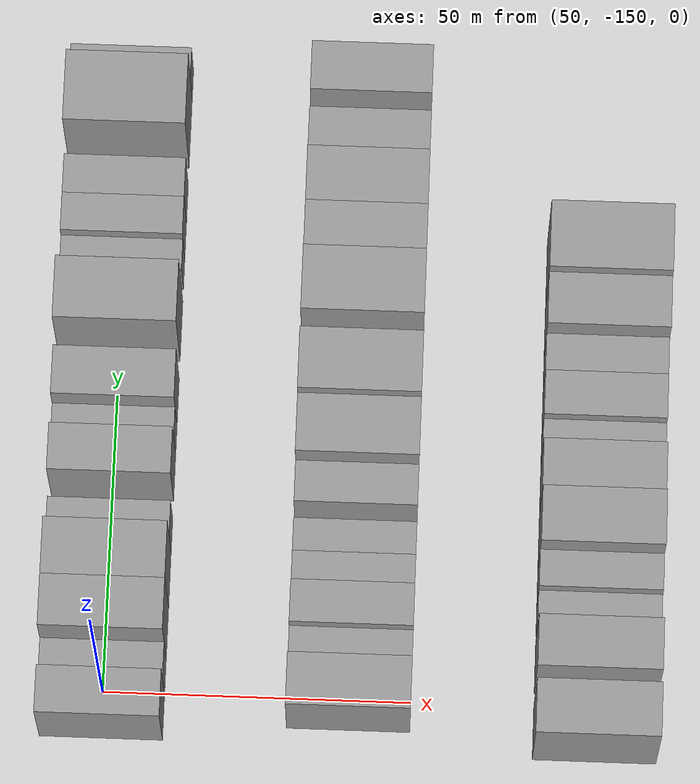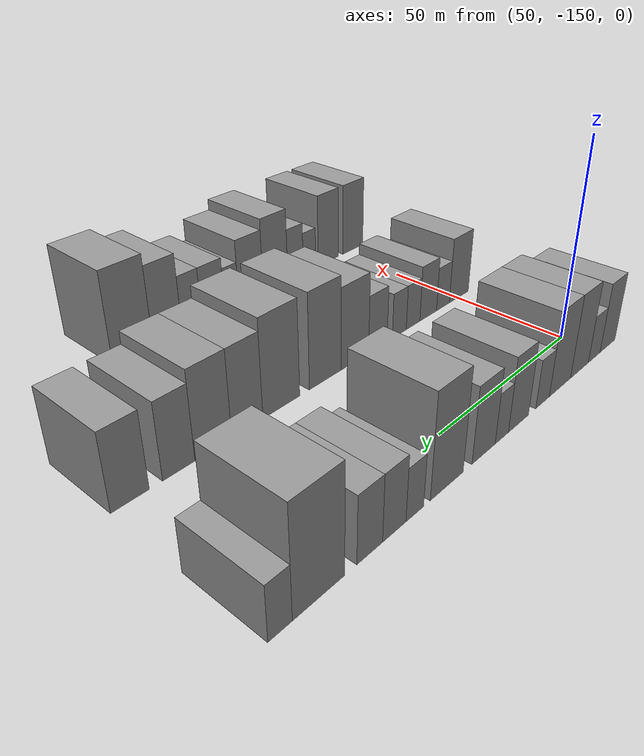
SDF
<sdf version="1.6">
 <world name="default">
  <model name="building_52">
   <static>1</static>
   <pose>50.0000 -153.7941 0 0.000000 0.000000 0.000000</pose>
   <link name="link">
    <pose>0 0 9.00 0 0 0</pose>
    <collision name="collision"><geometry><box><size>20.0000 7.7361 18.0000</size></box></geometry></collision>
    <visual name="visual">
     <cast_shadows>0</cast_shadows>
     <geometry><box><size>20.0000 7.7361 18.0000</size></box></geometry>
     <material>
      <script>
       <uri>model://grey_wall/materials/scripts</uri>
       <uri>model://grey_wall/materials/textures</uri>
       <name>vrc/grey_wall</name>
      </script>
     </material>
    </visual>
   </link>
  </model>
  <model name="building_53">
   <static>1</static>
   <pose>50.0000 -147.0172 0 0.000000 0.000000 0.000000</pose>
   <link name="link">
    <pose>0 0 6.00 0 0 0</pose>
    <collision name="collision"><geometry><box><size>20.0000 5.8177 12.0000</size></box></geometry></collision>
    <visual name="visual">
     <cast_shadows>0</cast_shadows>
     <geometry><box><size>20.0000 5.8177 12.0000</size></box></geometry>
     <material>
      <script>
       <uri>model://grey_wall/materials/scripts</uri>
       <uri>model://grey_wall/materials/textures</uri>
       <name>vrc/grey_wall</name>
      </script>
     </material>
    </visual>
   </link>
  </model>
  <model name="building_54">
   <static>1</static>
   <pose>50.0000 -139.8735 0 0.000000 0.000000 0.000000</pose>
   <link name="link">
    <pose>0 0 10.50 0 0 0</pose>
    <collision name="collision"><geometry><box><size>20.0000 8.4696 21.0000</size></box></geometry></collision>
    <visual name="visual">
     <cast_shadows>0</cast_shadows>
     <geometry><box><size>20.0000 8.4696 21.0000</size></box></geometry>
     <material>
      <script>
       <uri>model://grey_wall/materials/scripts</uri>
       <uri>model://grey_wall/materials/textures</uri>
       <name>vrc/grey_wall</name>
      </script>
     </material>
    </visual>
   </link>
  </model>
  <model name="building_55">
   <static>1</static>
   <pose>50.0000 -130.9446 0 0.000000 0.000000 0.000000</pose>
   <link name="link">
    <pose>0 0 10.50 0 0 0</pose>
    <collision name="collision"><geometry><box><size>20.0000 9.3882 21.0000</size></box></geometry></collision>
    <visual name="visual">
     <cast_shadows>0</cast_shadows>
     <geometry><box><size>20.0000 9.3882 21.0000</size></box></geometry>
     <material>
      <script>
       <uri>model://grey_wall/materials/scripts</uri>
       <uri>model://grey_wall/materials/textures</uri>
       <name>vrc/grey_wall</name>
      </script>
     </material>
    </visual>
   </link>
  </model>
  <model name="building_56">
   <static>1</static>
   <pose>50.0000 -123.4166 0 0.000000 0.000000 0.000000</pose>
   <link name="link">
    <pose>0 0 6.00 0 0 0</pose>
    <collision name="collision"><geometry><box><size>20.0000 5.6678 12.0000</size></box></geometry></collision>
    <visual name="visual">
     <cast_shadows>0</cast_shadows>
     <geometry><box><size>20.0000 5.6678 12.0000</size></box></geometry>
     <material>
      <script>
       <uri>model://grey_wall/materials/scripts</uri>
       <uri>model://grey_wall/materials/textures</uri>
       <name>vrc/grey_wall</name>
      </script>
     </material>
    </visual>
   </link>
  </model>
  <model name="building_57">
   <static>1</static>
   <pose>50.0000 -113.6862 0 0.000000 0.000000 0.000000</pose>
   <link name="link">
    <pose>0 0 9.00 0 0 0</pose>
    <collision name="collision"><geometry><box><size>20.0000 7.7929 18.0000</size></box></geometry></collision>
    <visual name="visual">
     <cast_shadows>0</cast_shadows>
     <geometry><box><size>20.0000 7.7929 18.0000</size></box></geometry>
     <material>
      <script>
       <uri>model://grey_wall/materials/scripts</uri>
       <uri>model://grey_wall/materials/textures</uri>
       <name>vrc/grey_wall</name>
      </script>
     </material>
    </visual>
   </link>
  </model>
  <model name="building_58">
   <static>1</static>
   <pose>50.0000 -107.3409 0 0.000000 0.000000 0.000000</pose>
   <link name="link">
    <pose>0 0 6.00 0 0 0</pose>
    <collision name="collision"><geometry><box><size>20.0000 4.8977 12.0000</size></box></geometry></collision>
    <visual name="visual">
     <cast_shadows>0</cast_shadows>
     <geometry><box><size>20.0000 4.8977 12.0000</size></box></geometry>
     <material>
      <script>
       <uri>model://grey_wall/materials/scripts</uri>
       <uri>model://grey_wall/materials/textures</uri>
       <name>vrc/grey_wall</name>
      </script>
     </material>
    </visual>
   </link>
  </model>
  <model name="building_59">
   <static>1</static>
   <pose>50.0000 -100.8337 0 0.000000 0.000000 0.000000</pose>
   <link name="link">
    <pose>0 0 9.00 0 0 0</pose>
    <collision name="collision"><geometry><box><size>20.0000 8.1168 18.0000</size></box></geometry></collision>
    <visual name="visual">
     <cast_shadows>0</cast_shadows>
     <geometry><box><size>20.0000 8.1168 18.0000</size></box></geometry>
     <material>
      <script>
       <uri>model://grey_wall/materials/scripts</uri>
       <uri>model://grey_wall/materials/textures</uri>
       <name>vrc/grey_wall</name>
      </script>
     </material>
    </visual>
   </link>
  </model>
  <model name="building_60">
   <static>1</static>
   <pose>50.0000 -88.5986 0 0.000000 0.000000 0.000000</pose>
   <link name="link">
    <pose>0 0 12.00 0 0 0</pose>
    <collision name="collision"><geometry><box><size>20.0000 10.3534 24.0000</size></box></geometry></collision>
    <visual name="visual">
     <cast_shadows>0</cast_shadows>
     <geometry><box><size>20.0000 10.3534 24.0000</size></box></geometry>
     <material>
      <script>
       <uri>model://grey_wall/materials/scripts</uri>
       <uri>model://grey_wall/materials/textures</uri>
       <name>vrc/grey_wall</name>
      </script>
     </material>
    </visual>
   </link>
  </model>
  <model name="building_61">
   <static>1</static>
   <pose>50.0000 -78.8616 0 0.000000 0.000000 0.000000</pose>
   <link name="link">
    <pose>0 0 6.00 0 0 0</pose>
    <collision name="collision"><geometry><box><size>20.0000 5.1204 12.0000</size></box></geometry></collision>
    <visual name="visual">
     <cast_shadows>0</cast_shadows>
     <geometry><box><size>20.0000 5.1204 12.0000</size></box></geometry>
     <material>
      <script>
       <uri>model://grey_wall/materials/scripts</uri>
       <uri>model://grey_wall/materials/textures</uri>
       <name>vrc/grey_wall</name>
      </script>
     </material>
    </visual>
   </link>
  </model>
  <model name="building_62">
   <static>1</static>
   <pose>50.0000 -73.0884 0 0.000000 0.000000 0.000000</pose>
   <link name="link">
    <pose>0 0 7.50 0 0 0</pose>
    <collision name="collision"><geometry><box><size>20.0000 6.4260 15.0000</size></box></geometry></collision>
    <visual name="visual">
     <cast_shadows>0</cast_shadows>
     <geometry><box><size>20.0000 6.4260 15.0000</size></box></geometry>
     <material>
      <script>
       <uri>model://grey_wall/materials/scripts</uri>
       <uri>model://grey_wall/materials/textures</uri>
       <name>vrc/grey_wall</name>
      </script>
     </material>
    </visual>
   </link>
  </model>
  <model name="building_63">
   <static>1</static>
   <pose>50.0000 -66.5584 0 0.000000 0.000000 0.000000</pose>
   <link name="link">
    <pose>0 0 7.50 0 0 0</pose>
    <collision name="collision"><geometry><box><size>20.0000 6.6340 15.0000</size></box></geometry></collision>
    <visual name="visual">
     <cast_shadows>0</cast_shadows>
     <geometry><box><size>20.0000 6.6340 15.0000</size></box></geometry>
     <material>
      <script>
       <uri>model://grey_wall/materials/scripts</uri>
       <uri>model://grey_wall/materials/textures</uri>
       <name>vrc/grey_wall</name>
      </script>
     </material>
    </visual>
   </link>
  </model>
  <model name="building_64">
   <static>1</static>
   <pose>50.0000 -54.2658 0 0.000000 0.000000 0.000000</pose>
   <link name="link">
    <pose>0 0 12.00 0 0 0</pose>
    <collision name="collision"><geometry><box><size>20.0000 11.9513 24.0000</size></box></geometry></collision>
    <visual name="visual">
     <cast_shadows>0</cast_shadows>
     <geometry><box><size>20.0000 11.9513 24.0000</size></box></geometry>
     <material>
      <script>
       <uri>model://grey_wall/materials/scripts</uri>
       <uri>model://grey_wall/materials/textures</uri>
       <name>vrc/grey_wall</name>
      </script>
     </material>
    </visual>
   </link>
  </model>
  <model name="building_65">
   <static>1</static>
   <pose>50.0000 -45.7185 0 0.000000 0.000000 0.000000</pose>
   <link name="link">
    <pose>0 0 6.00 0 0 0</pose>
    <collision name="collision"><geometry><box><size>20.0000 5.1433 12.0000</size></box></geometry></collision>
    <visual name="visual">
     <cast_shadows>0</cast_shadows>
     <geometry><box><size>20.0000 5.1433 12.0000</size></box></geometry>
     <material>
      <script>
       <uri>model://grey_wall/materials/scripts</uri>
       <uri>model://grey_wall/materials/textures</uri>
       <name>vrc/grey_wall</name>
      </script>
     </material>
    </visual>
   </link>
  </model>
  <model name="building_194">
   <static>1</static>
   <pose>90.0000 -150.6109 0 0.000000 0.000000 0.000000</pose>
   <link name="link">
    <pose>0 0 9.00 0 0 0</pose>
    <collision name="collision"><geometry><box><size>20.0000 8.6053 18.0000</size></box></geometry></collision>
    <visual name="visual">
     <cast_shadows>0</cast_shadows>
     <geometry><box><size>20.0000 8.6053 18.0000</size></box></geometry>
     <material>
      <script>
       <uri>model://grey_wall/materials/scripts</uri>
       <uri>model://grey_wall/materials/textures</uri>
       <name>vrc/grey_wall</name>
      </script>
     </material>
    </visual>
   </link>
  </model>
  <model name="building_195">
   <static>1</static>
   <pose>90.0000 -143.4788 0 0.000000 0.000000 0.000000</pose>
   <link name="link">
    <pose>0 0 6.00 0 0 0</pose>
    <collision name="collision"><geometry><box><size>20.0000 5.6589 12.0000</size></box></geometry></collision>
    <visual name="visual">
     <cast_shadows>0</cast_shadows>
     <geometry><box><size>20.0000 5.6589 12.0000</size></box></geometry>
     <material>
      <script>
       <uri>model://grey_wall/materials/scripts</uri>
       <uri>model://grey_wall/materials/textures</uri>
       <name>vrc/grey_wall</name>
      </script>
     </material>
    </visual>
   </link>
  </model>
  <model name="building_196">
   <static>1</static>
   <pose>90.0000 -137.1305 0 0.000000 0.000000 0.000000</pose>
   <link name="link">
    <pose>0 0 7.50 0 0 0</pose>
    <collision name="collision"><geometry><box><size>20.0000 7.0379 15.0000</size></box></geometry></collision>
    <visual name="visual">
     <cast_shadows>0</cast_shadows>
     <geometry><box><size>20.0000 7.0379 15.0000</size></box></geometry>
     <material>
      <script>
       <uri>model://grey_wall/materials/scripts</uri>
       <uri>model://grey_wall/materials/textures</uri>
       <name>vrc/grey_wall</name>
      </script>
     </material>
    </visual>
   </link>
  </model>
  <model name="building_197">
   <static>1</static>
   <pose>90.0000 -130.8637 0 0.000000 0.000000 0.000000</pose>
   <link name="link">
    <pose>0 0 6.00 0 0 0</pose>
    <collision name="collision"><geometry><box><size>20.0000 5.4956 12.0000</size></box></geometry></collision>
    <visual name="visual">
     <cast_shadows>0</cast_shadows>
     <geometry><box><size>20.0000 5.4956 12.0000</size></box></geometry>
     <material>
      <script>
       <uri>model://grey_wall/materials/scripts</uri>
       <uri>model://grey_wall/materials/textures</uri>
       <name>vrc/grey_wall</name>
      </script>
     </material>
    </visual>
   </link>
  </model>
  <model name="building_198">
   <static>1</static>
   <pose>90.0000 -125.3883 0 0.000000 0.000000 0.000000</pose>
   <link name="link">
    <pose>0 0 6.00 0 0 0</pose>
    <collision name="collision"><geometry><box><size>20.0000 5.4553 12.0000</size></box></geometry></collision>
    <visual name="visual">
     <cast_shadows>0</cast_shadows>
     <geometry><box><size>20.0000 5.4553 12.0000</size></box></geometry>
     <material>
      <script>
       <uri>model://grey_wall/materials/scripts</uri>
       <uri>model://grey_wall/materials/textures</uri>
       <name>vrc/grey_wall</name>
      </script>
     </material>
    </visual>
   </link>
  </model>
  <model name="building_199">
   <static>1</static>
   <pose>90.0000 -117.2525 0 0.000000 0.000000 0.000000</pose>
   <link name="link">
    <pose>0 0 7.50 0 0 0</pose>
    <collision name="collision"><geometry><box><size>20.0000 6.8163 15.0000</size></box></geometry></collision>
    <visual name="visual">
     <cast_shadows>0</cast_shadows>
     <geometry><box><size>20.0000 6.8163 15.0000</size></box></geometry>
     <material>
      <script>
       <uri>model://grey_wall/materials/scripts</uri>
       <uri>model://grey_wall/materials/textures</uri>
       <name>vrc/grey_wall</name>
      </script>
     </material>
    </visual>
   </link>
  </model>
  <model name="building_200">
   <static>1</static>
   <pose>90.0000 -109.0110 0 0.000000 0.000000 0.000000</pose>
   <link name="link">
    <pose>0 0 10.50 0 0 0</pose>
    <collision name="collision"><geometry><box><size>20.0000 9.6666 21.0000</size></box></geometry></collision>
    <visual name="visual">
     <cast_shadows>0</cast_shadows>
     <geometry><box><size>20.0000 9.6666 21.0000</size></box></geometry>
     <material>
      <script>
       <uri>model://grey_wall/materials/scripts</uri>
       <uri>model://grey_wall/materials/textures</uri>
       <name>vrc/grey_wall</name>
      </script>
     </material>
    </visual>
   </link>
  </model>
  <model name="building_201">
   <static>1</static>
   <pose>90.0000 -99.0348 0 0.000000 0.000000 0.000000</pose>
   <link name="link">
    <pose>0 0 12.00 0 0 0</pose>
    <collision name="collision"><geometry><box><size>20.0000 10.2858 24.0000</size></box></geometry></collision>
    <visual name="visual">
     <cast_shadows>0</cast_shadows>
     <geometry><box><size>20.0000 10.2858 24.0000</size></box></geometry>
     <material>
      <script>
       <uri>model://grey_wall/materials/scripts</uri>
       <uri>model://grey_wall/materials/textures</uri>
       <name>vrc/grey_wall</name>
      </script>
     </material>
    </visual>
   </link>
  </model>
  <model name="building_202">
   <static>1</static>
   <pose>90.0000 -85.4838 0 0.000000 0.000000 0.000000</pose>
   <link name="link">
    <pose>0 0 12.00 0 0 0</pose>
    <collision name="collision"><geometry><box><size>20.0000 10.8162 24.0000</size></box></geometry></collision>
    <visual name="visual">
     <cast_shadows>0</cast_shadows>
     <geometry><box><size>20.0000 10.8162 24.0000</size></box></geometry>
     <material>
      <script>
       <uri>model://grey_wall/materials/scripts</uri>
       <uri>model://grey_wall/materials/textures</uri>
       <name>vrc/grey_wall</name>
      </script>
     </material>
    </visual>
   </link>
  </model>
  <model name="building_203">
   <static>1</static>
   <pose>90.0000 -75.8133 0 0.000000 0.000000 0.000000</pose>
   <link name="link">
    <pose>0 0 10.50 0 0 0</pose>
    <collision name="collision"><geometry><box><size>20.0000 8.5249 21.0000</size></box></geometry></collision>
    <visual name="visual">
     <cast_shadows>0</cast_shadows>
     <geometry><box><size>20.0000 8.5249 21.0000</size></box></geometry>
     <material>
      <script>
       <uri>model://grey_wall/materials/scripts</uri>
       <uri>model://grey_wall/materials/textures</uri>
       <name>vrc/grey_wall</name>
      </script>
     </material>
    </visual>
   </link>
  </model>
  <model name="building_204">
   <static>1</static>
   <pose>90.0000 -66.8872 0 0.000000 0.000000 0.000000</pose>
   <link name="link">
    <pose>0 0 10.50 0 0 0</pose>
    <collision name="collision"><geometry><box><size>20.0000 9.3274 21.0000</size></box></geometry></collision>
    <visual name="visual">
     <cast_shadows>0</cast_shadows>
     <geometry><box><size>20.0000 9.3274 21.0000</size></box></geometry>
     <material>
      <script>
       <uri>model://grey_wall/materials/scripts</uri>
       <uri>model://grey_wall/materials/textures</uri>
       <name>vrc/grey_wall</name>
      </script>
     </material>
    </visual>
   </link>
  </model>
  <model name="building_205">
   <static>1</static>
   <pose>90.0000 -58.3926 0 0.000000 0.000000 0.000000</pose>
   <link name="link">
    <pose>0 0 9.00 0 0 0</pose>
    <collision name="collision"><geometry><box><size>20.0000 7.6618 18.0000</size></box></geometry></collision>
    <visual name="visual">
     <cast_shadows>0</cast_shadows>
     <geometry><box><size>20.0000 7.6618 18.0000</size></box></geometry>
     <material>
      <script>
       <uri>model://grey_wall/materials/scripts</uri>
       <uri>model://grey_wall/materials/textures</uri>
       <name>vrc/grey_wall</name>
      </script>
     </material>
    </visual>
   </link>
  </model>
  <model name="building_206">
   <static>1</static>
   <pose>90.0000 -47.3894 0 0.000000 0.000000 0.000000</pose>
   <link name="link">
    <pose>0 0 9.00 0 0 0</pose>
    <collision name="collision"><geometry><box><size>20.0000 8.3446 18.0000</size></box></geometry></collision>
    <visual name="visual">
     <cast_shadows>0</cast_shadows>
     <geometry><box><size>20.0000 8.3446 18.0000</size></box></geometry>
     <material>
      <script>
       <uri>model://grey_wall/materials/scripts</uri>
       <uri>model://grey_wall/materials/textures</uri>
       <name>vrc/grey_wall</name>
      </script>
     </material>
    </visual>
   </link>
  </model>
  <model name="building_334">
   <static>1</static>
   <pose>130.0000 -154.2457 0 0.000000 0.000000 0.000000</pose>
   <link name="link">
    <pose>0 0 10.50 0 0 0</pose>
    <collision name="collision"><geometry><box><size>20.0000 8.8935 21.0000</size></box></geometry></collision>
    <visual name="visual">
     <cast_shadows>0</cast_shadows>
     <geometry><box><size>20.0000 8.8935 21.0000</size></box></geometry>
     <material>
      <script>
       <uri>model://grey_wall/materials/scripts</uri>
       <uri>model://grey_wall/materials/textures</uri>
       <name>vrc/grey_wall</name>
      </script>
     </material>
    </visual>
   </link>
  </model>
  <model name="building_335">
   <static>1</static>
   <pose>130.0000 -143.5703 0 0.000000 0.000000 0.000000</pose>
   <link name="link">
    <pose>0 0 10.50 0 0 0</pose>
    <collision name="collision"><geometry><box><size>20.0000 8.4573 21.0000</size></box></geometry></collision>
    <visual name="visual">
     <cast_shadows>0</cast_shadows>
     <geometry><box><size>20.0000 8.4573 21.0000</size></box></geometry>
     <material>
      <script>
       <uri>model://grey_wall/materials/scripts</uri>
       <uri>model://grey_wall/materials/textures</uri>
       <name>vrc/grey_wall</name>
      </script>
     </material>
    </visual>
   </link>
  </model>
  <model name="building_336">
   <static>1</static>
   <pose>130.0000 -135.8262 0 0.000000 0.000000 0.000000</pose>
   <link name="link">
    <pose>0 0 6.00 0 0 0</pose>
    <collision name="collision"><geometry><box><size>20.0000 5.0308 12.0000</size></box></geometry></collision>
    <visual name="visual">
     <cast_shadows>0</cast_shadows>
     <geometry><box><size>20.0000 5.0308 12.0000</size></box></geometry>
     <material>
      <script>
       <uri>model://grey_wall/materials/scripts</uri>
       <uri>model://grey_wall/materials/textures</uri>
       <name>vrc/grey_wall</name>
      </script>
     </material>
    </visual>
   </link>
  </model>
  <model name="building_337">
   <static>1</static>
   <pose>130.0000 -130.2888 0 0.000000 0.000000 0.000000</pose>
   <link name="link">
    <pose>0 0 7.50 0 0 0</pose>
    <collision name="collision"><geometry><box><size>20.0000 6.0440 15.0000</size></box></geometry></collision>
    <visual name="visual">
     <cast_shadows>0</cast_shadows>
     <geometry><box><size>20.0000 6.0440 15.0000</size></box></geometry>
     <material>
      <script>
       <uri>model://grey_wall/materials/scripts</uri>
       <uri>model://grey_wall/materials/textures</uri>
       <name>vrc/grey_wall</name>
      </script>
     </material>
    </visual>
   </link>
  </model>
  <model name="building_338">
   <static>1</static>
   <pose>130.0000 -122.6808 0 0.000000 0.000000 0.000000</pose>
   <link name="link">
    <pose>0 0 10.50 0 0 0</pose>
    <collision name="collision"><geometry><box><size>20.0000 9.1720 21.0000</size></box></geometry></collision>
    <visual name="visual">
     <cast_shadows>0</cast_shadows>
     <geometry><box><size>20.0000 9.1720 21.0000</size></box></geometry>
     <material>
      <script>
       <uri>model://grey_wall/materials/scripts</uri>
       <uri>model://grey_wall/materials/textures</uri>
       <name>vrc/grey_wall</name>
      </script>
     </material>
    </visual>
   </link>
  </model>
  <model name="building_339">
   <static>1</static>
   <pose>130.0000 -113.7663 0 0.000000 0.000000 0.000000</pose>
   <link name="link">
    <pose>0 0 9.00 0 0 0</pose>
    <collision name="collision"><geometry><box><size>20.0000 8.6570 18.0000</size></box></geometry></collision>
    <visual name="visual">
     <cast_shadows>0</cast_shadows>
     <geometry><box><size>20.0000 8.6570 18.0000</size></box></geometry>
     <material>
      <script>
       <uri>model://grey_wall/materials/scripts</uri>
       <uri>model://grey_wall/materials/textures</uri>
       <name>vrc/grey_wall</name>
      </script>
     </material>
    </visual>
   </link>
  </model>
  <model name="building_340">
   <static>1</static>
   <pose>130.0000 -107.0268 0 0.000000 0.000000 0.000000</pose>
   <link name="link">
    <pose>0 0 6.00 0 0 0</pose>
    <collision name="collision"><geometry><box><size>20.0000 4.8220 12.0000</size></box></geometry></collision>
    <visual name="visual">
     <cast_shadows>0</cast_shadows>
     <geometry><box><size>20.0000 4.8220 12.0000</size></box></geometry>
     <material>
      <script>
       <uri>model://grey_wall/materials/scripts</uri>
       <uri>model://grey_wall/materials/textures</uri>
       <name>vrc/grey_wall</name>
      </script>
     </material>
    </visual>
   </link>
  </model>
  <model name="building_341">
   <static>1</static>
   <pose>130.0000 -100.8973 0 0.000000 0.000000 0.000000</pose>
   <link name="link">
    <pose>0 0 7.50 0 0 0</pose>
    <collision name="collision"><geometry><box><size>20.0000 7.4370 15.0000</size></box></geometry></collision>
    <visual name="visual">
     <cast_shadows>0</cast_shadows>
     <geometry><box><size>20.0000 7.4370 15.0000</size></box></geometry>
     <material>
      <script>
       <uri>model://grey_wall/materials/scripts</uri>
       <uri>model://grey_wall/materials/textures</uri>
       <name>vrc/grey_wall</name>
      </script>
     </material>
    </visual>
   </link>
  </model>
  <model name="building_342">
   <static>1</static>
   <pose>130.0000 -94.0949 0 0.000000 0.000000 0.000000</pose>
   <link name="link">
    <pose>0 0 7.50 0 0 0</pose>
    <collision name="collision"><geometry><box><size>20.0000 6.1679 15.0000</size></box></geometry></collision>
    <visual name="visual">
     <cast_shadows>0</cast_shadows>
     <geometry><box><size>20.0000 6.1679 15.0000</size></box></geometry>
     <material>
      <script>
       <uri>model://grey_wall/materials/scripts</uri>
       <uri>model://grey_wall/materials/textures</uri>
       <name>vrc/grey_wall</name>
      </script>
     </material>
    </visual>
   </link>
  </model>
  <model name="building_343">
   <static>1</static>
   <pose>130.0000 -86.6816 0 0.000000 0.000000 0.000000</pose>
   <link name="link">
    <pose>0 0 10.50 0 0 0</pose>
    <collision name="collision"><geometry><box><size>20.0000 8.6586 21.0000</size></box></geometry></collision>
    <visual name="visual">
     <cast_shadows>0</cast_shadows>
     <geometry><box><size>20.0000 8.6586 21.0000</size></box></geometry>
     <material>
      <script>
       <uri>model://grey_wall/materials/scripts</uri>
       <uri>model://grey_wall/materials/textures</uri>
       <name>vrc/grey_wall</name>
      </script>
     </material>
    </visual>
   </link>
  </model>
  <model name="building_344">
   <static>1</static>
   <pose>130.0000 -76.7237 0 0.000000 0.000000 0.000000</pose>
   <link name="link">
    <pose>0 0 12.00 0 0 0</pose>
    <collision name="collision"><geometry><box><size>20.0000 11.2573 24.0000</size></box></geometry></collision>
    <visual name="visual">
     <cast_shadows>0</cast_shadows>
     <geometry><box><size>20.0000 11.2573 24.0000</size></box></geometry>
     <material>
      <script>
       <uri>model://grey_wall/materials/scripts</uri>
       <uri>model://grey_wall/materials/textures</uri>
       <name>vrc/grey_wall</name>
      </script>
     </material>
    </visual>
   </link>
  </model>
 </world>
</sdf>
